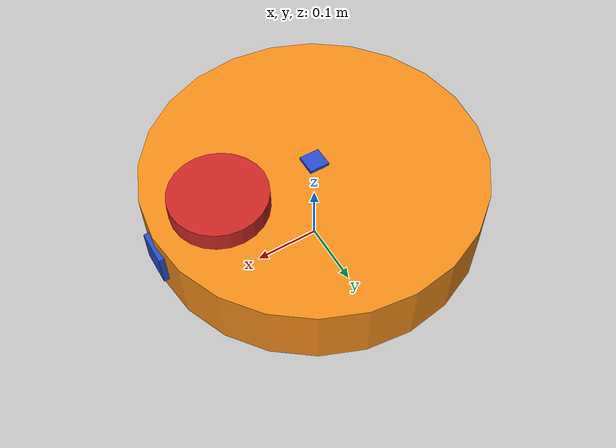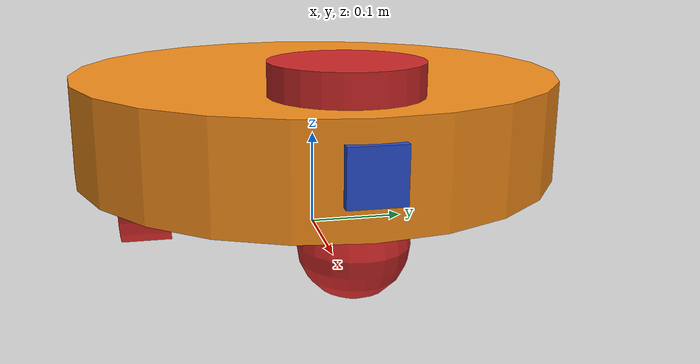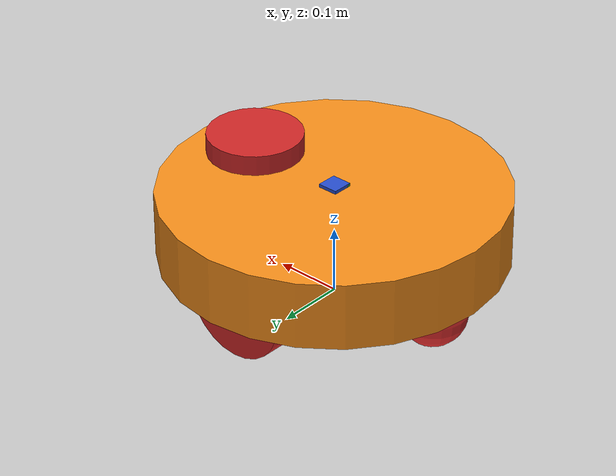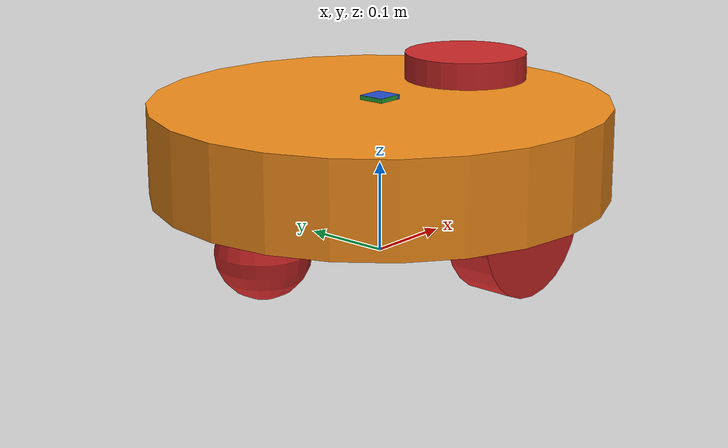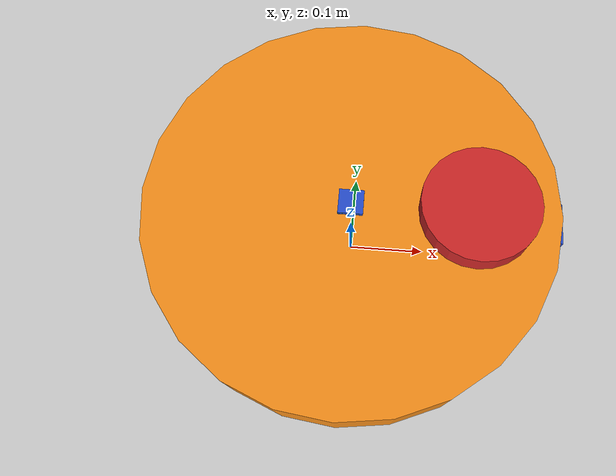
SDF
<sdf version='1.6'>
  <model name='round_bot'>
    <link name='base_footprint'>
      <inertial>
        <pose>0.004166666666666667 0 0.0905 0 0 0</pose>
        <mass>3.6000000000000001</mass>
        <inertia>
          <ixx>0.040327160000000001</ixx>
          <ixy>0</ixy>
          <ixz>-0.0013424999999999999</ixz>
          <iyy>0.09111466</iyy>
          <iyz>0</iyz>
          <izz>0.1152875</izz>
        </inertia>
      </inertial>
      <collision name='base_footprint_fixed_joint_lump__chassis_collision'>
        <pose>0 0 0.12 0 0 0</pose>
        <geometry>
          <cylinder>
            <length>0.10000000000000001</length>
            <radius>0.25</radius>
          </cylinder>
        </geometry>
        <surface>
          <contact>
            <ode/>
          </contact>
          <friction>
            <ode/>
          </friction>
        </surface>
      </collision>
      <collision name='base_footprint_fixed_joint_lump__back_caster_link_collision_1'>
        <pose>-0.18 0 0.0452 0 0 0</pose>
        <geometry>
          <sphere>
            <radius>0.050000000000000003</radius>
          </sphere>
        </geometry>
        <surface>
          <contact>
            <ode/>
          </contact>
          <friction>
            <ode/>
          </friction>
        </surface>
      </collision>
      <collision name='base_footprint_fixed_joint_lump__front_caster_link_collision_2'>
        <pose>0.18 0 0.0452 0 0 0</pose>
        <geometry>
          <sphere>
            <radius>0.050000000000000003</radius>
          </sphere>
        </geometry>
        <surface>
          <contact>
            <ode/>
          </contact>
          <friction>
            <ode/>
          </friction>
        </surface>
      </collision>
      <collision name='base_footprint_fixed_joint_lump__lidar_link_collision_3'>
        <pose>0.15 0 0.18 0 0 0</pose>
        <geometry>
          <cylinder>
            <length>0.040000000000000001</length>
            <radius>0.070000000000000007</radius>
          </cylinder>
        </geometry>
        <surface>
          <contact>
            <ode/>
          </contact>
          <friction>
            <ode/>
          </friction>
        </surface>
      </collision>
      <visual name='base_footprint_fixed_joint_lump__chassis_visual'>
        <pose>0 0 0.12 0 0 0</pose>
        <geometry>
          <cylinder>
            <length>0.10000000000000001</length>
            <radius>0.25</radius>
          </cylinder>
        </geometry>
        <material>
          <script>
            <name>Gazebo/Orange</name>
            <uri>file://media/materials/scripts/gazebo.material</uri>
          </script>
          <diffuse>1 0.375 0.125 1</diffuse>
          <ambient>1 0.375 0.125 1</ambient>
        </material>
      </visual>
      <visual name='base_footprint_fixed_joint_lump__back_caster_link_visual_1'>
        <pose>-0.18 0 0.0452 0 0 0</pose>
        <geometry>
          <sphere>
            <radius>0.050000000000000003</radius>
          </sphere>
        </geometry>
        <material>
          <script>
            <name>Gazebo/Red</name>
            <uri>file://media/materials/scripts/gazebo.material</uri>
          </script>
          <diffuse>1 0 0 1</diffuse>
          <ambient>1 0 0 1</ambient>
        </material>
      </visual>
      <visual name='base_footprint_fixed_joint_lump__camera_link_visual_2'>
        <pose>0.25 0 0.125 0 0 0</pose>
        <geometry>
          <box>
            <size>0.01 0.05 0.05</size>
          </box>
        </geometry>
        <material>
          <script>
            <name>Gazebo/Blue</name>
            <uri>file://media/materials/scripts/gazebo.material</uri>
          </script>
          <diffuse>0 0 1 1</diffuse>
          <ambient>0 0 1 1</ambient>
        </material>
      </visual>
      <visual name='base_footprint_fixed_joint_lump__front_caster_link_visual_3'>
        <pose>0.18 0 0.0452 0 0 0</pose>
        <geometry>
          <sphere>
            <radius>0.050000000000000003</radius>
          </sphere>
        </geometry>
        <material>
          <script>
            <name>Gazebo/Red</name>
            <uri>file://media/materials/scripts/gazebo.material</uri>
          </script>
          <diffuse>1 0 0 1</diffuse>
          <ambient>1 0 0 1</ambient>
        </material>
      </visual>
      <visual name='base_footprint_fixed_joint_lump__gps_link_visual_4'>
        <pose>0 0 0.17 0 0 0</pose>
        <geometry>
          <box>
            <size>0.03 0.03 0.01</size>
          </box>
        </geometry>
        <material>
          <script>
            <name>Gazebo/Blue</name>
            <uri>file://media/materials/scripts/gazebo.material</uri>
          </script>
          <diffuse>0 0 1 1</diffuse>
          <ambient>0 0 1 1</ambient>
        </material>
      </visual>
      <visual name='base_footprint_fixed_joint_lump__imu_link_visual_5'>
        <pose>0 0 0.165 0 0 0</pose>
        <geometry>
          <box>
            <size>0.03 0.03 0.02</size>
          </box>
        </geometry>
        <material>
          <script>
            <name>Gazebo/Green</name>
            <uri>file://media/materials/scripts/gazebo.material</uri>
          </script>
          <diffuse>0 1 0 1</diffuse>
          <ambient>0 1 0 1</ambient>
        </material>
      </visual>
      <visual name='base_footprint_fixed_joint_lump__lidar_link_visual_6'>
        <pose>0.15 0 0.18 0 0 0</pose>
        <geometry>
          <cylinder>
            <length>0.040000000000000001</length>
            <radius>0.070000000000000007</radius>
          </cylinder>
        </geometry>
        <material>
          <script>
            <name>Gazebo/Red</name>
            <uri>file://media/materials/scripts/gazebo.material</uri>
          </script>
          <diffuse>1 0 0 1</diffuse>
          <ambient>1 0 0 1</ambient>
        </material>
      </visual>
      <sensor name='camera' type='camera'>
        <update_rate>10</update_rate>
        <camera name='head'>
          <camera_info_topic>camera/camera_info</camera_info_topic>
          <horizontal_fov>1.3962634</horizontal_fov>
          <image>
            <width>640</width>
            <height>480</height>
            <format>R8G8B8</format>
          </image>
          <clip>
            <near>0.050000000000000003</near>
            <far>8</far>
          </clip>
        </camera>
        <topic>camera/image_raw</topic>
        <pose>0.25 0 0.125 0 -0 0</pose>
        <gz_frame_id>camera_link_optical</gz_frame_id>
      </sensor>
      <sensor name='imu_sensor' type='imu'>
        <always_on>true</always_on>
        <update_rate>100</update_rate>
        <visualize>true</visualize>
        <topic>imu</topic>
        <pose>0 0 0.165 0 -0 0</pose>
        <gz_frame_id>imu_link</gz_frame_id>
      </sensor>
      <sensor name='hls_lfcd_lds' type='gpu_lidar'>
        <always_on>true</always_on>
        <update_rate>30</update_rate>
        <lidar>
          <scan>
            <horizontal>
              <samples>360</samples>
              <resolution>1</resolution>
              <min_angle>-3.1415899999999999</min_angle>
              <max_angle>3.1415899999999999</max_angle>
            </horizontal>
          </scan>
          <range>
            <min>0.10000000000000001</min>
            <max>10</max>
            <resolution>0.10000000000000001</resolution>
          </range>
          <noise>
            <type>gaussian</type>
            <mean>0</mean>
            <stddev>0.01</stddev>
          </noise>
        </lidar>
        <topic>scan</topic>
        <pose>0.15 0 0.18 0 -0 0</pose>
        <gz_frame_id>lidar_link</gz_frame_id>
      </sensor>
    </link>
    <joint name='left_wheel_joint' type='revolute'>
      <pose relative_to='base_footprint'>0 0.18 0.075 -1.57 0 0</pose>
      <parent>base_footprint</parent>
      <child>left_wheel</child>
      <axis>
        <xyz>0 0 1</xyz>
        <limit>
          <lower>-10000000000000000</lower>
          <upper>10000000000000000</upper>
        </limit>
        <dynamics>
          <spring_reference>0</spring_reference>
          <spring_stiffness>0</spring_stiffness>
        </dynamics>
      </axis>
    </joint>
    <link name='left_wheel'>
      <pose relative_to='left_wheel_joint'>0 0 0 0 0 0</pose>
      <inertial>
        <pose>0 0 0 0 0 0</pose>
        <mass>0.75</mass>
        <inertia>
          <ixx>0.00135625</ixx>
          <ixy>0</ixy>
          <ixz>0</ixz>
          <iyy>0.00135625</iyy>
          <iyz>0</iyz>
          <izz>0.0023999999999999998</izz>
        </inertia>
      </inertial>
      <collision name='left_wheel_collision'>
        <pose>0 0 0 0 0 0</pose>
        <geometry>
          <cylinder>
            <length>0.050000000000000003</length>
            <radius>0.080000000000000002</radius>
          </cylinder>
        </geometry>
        <surface>
          <contact>
            <ode/>
          </contact>
          <friction>
            <ode/>
          </friction>
        </surface>
      </collision>
      <visual name='left_wheel_visual'>
        <pose>0 0 0 0 0 0</pose>
        <geometry>
          <cylinder>
            <length>0.050000000000000003</length>
            <radius>0.080000000000000002</radius>
          </cylinder>
        </geometry>
        <material>
          <script>
            <name>Gazebo/Red</name>
            <uri>file://media/materials/scripts/gazebo.material</uri>
          </script>
          <diffuse>1 0 0 1</diffuse>
          <ambient>1 0 0 1</ambient>
        </material>
      </visual>
    </link>
    <joint name='right_wheel_joint' type='revolute'>
      <pose relative_to='base_footprint'>0 -0.18 0.075 -1.57 0 0</pose>
      <parent>base_footprint</parent>
      <child>right_wheel</child>
      <axis>
        <xyz>0 0 1</xyz>
        <limit>
          <lower>-10000000000000000</lower>
          <upper>10000000000000000</upper>
        </limit>
        <dynamics>
          <spring_reference>0</spring_reference>
          <spring_stiffness>0</spring_stiffness>
        </dynamics>
      </axis>
    </joint>
    <link name='right_wheel'>
      <pose relative_to='right_wheel_joint'>0 0 0 0 0 0</pose>
      <inertial>
        <pose>0 0 0 0 0 0</pose>
        <mass>0.75</mass>
        <inertia>
          <ixx>0.00135625</ixx>
          <ixy>0</ixy>
          <ixz>0</ixz>
          <iyy>0.00135625</iyy>
          <iyz>0</iyz>
          <izz>0.0023999999999999998</izz>
        </inertia>
      </inertial>
      <collision name='right_wheel_collision'>
        <pose>0 0 0 0 0 0</pose>
        <geometry>
          <cylinder>
            <length>0.050000000000000003</length>
            <radius>0.080000000000000002</radius>
          </cylinder>
        </geometry>
        <surface>
          <contact>
            <ode/>
          </contact>
          <friction>
            <ode/>
          </friction>
        </surface>
      </collision>
      <visual name='right_wheel_visual'>
        <pose>0 0 0 0 0 0</pose>
        <geometry>
          <cylinder>
            <length>0.050000000000000003</length>
            <radius>0.080000000000000002</radius>
          </cylinder>
        </geometry>
        <material>
          <script>
            <name>Gazebo/Red</name>
            <uri>file://media/materials/scripts/gazebo.material</uri>
          </script>
          <diffuse>1 0 0 1</diffuse>
          <ambient>1 0 0 1</ambient>
        </material>
      </visual>
    </link>
    <plugin name='gz::sim::systems::DiffDrive' filename='gz-sim-diff-drive-system'>
      <left_joint>left_wheel_joint</left_joint>
      <right_joint>right_wheel_joint</right_joint>
      <wheel_separation>0.36</wheel_separation>
      <wheel_radius>0.08</wheel_radius>
      <max_linear_acceleration>1</max_linear_acceleration>
      <min_linear_acceleration>-1</min_linear_acceleration>
      <max_angular_acceleration>2</max_angular_acceleration>
      <min_angular_acceleration>-2</min_angular_acceleration>
      <max_linear_velocity>0.46</max_linear_velocity>
      <min_linear_velocity>-0.46</min_linear_velocity>
      <max_angular_velocity>1.9</max_angular_velocity>
      <min_angular_velocity>-1.9</min_angular_velocity>
      <frame_id>odom</frame_id>
      <child_frame_id>base_footprint</child_frame_id>
      <odom_topic>odom</odom_topic>
      <odom_publisher_frequency>50</odom_publisher_frequency>
      <tf_topic>/tf</tf_topic>
      <topic>cmd_vel</topic>
    </plugin>
    <plugin name='gz::sim::systems::JointStatePublisher' filename='gz-sim-joint-state-publisher-system'>
      <topic>joint_states</topic>
      <joint_name>left_wheel_joint</joint_name>
      <joint_name>right_wheel_joint</joint_name>
    </plugin>
    <frame name='back_caster_joint' attached_to='chassis'>
      <pose>-0.18 0 0.0452 0 -0 0</pose>
    </frame>
    <frame name='back_caster_link' attached_to='back_caster_joint'/>
    <frame name='camera_optical_joint' attached_to='camera_link'>
      <pose>0 0 0 -1.57 -0 -1.57</pose>
    </frame>
    <frame name='camera_link_optical' attached_to='camera_optical_joint'/>
    <frame name='camera_joint' attached_to='chassis'>
      <pose>0.25 0 0.125 0 -0 0</pose>
    </frame>
    <frame name='camera_link' attached_to='camera_joint'/>
    <frame name='front_caster_joint' attached_to='chassis'>
      <pose>0.18 0 0.0452 0 -0 0</pose>
    </frame>
    <frame name='front_caster_link' attached_to='front_caster_joint'/>
    <frame name='gps_joint' attached_to='chassis'>
      <pose>0 0 0.17 0 -0 0</pose>
    </frame>
    <frame name='gps_link' attached_to='gps_joint'/>
    <frame name='imu_joint' attached_to='chassis'>
      <pose>0 0 0.165 0 -0 0</pose>
    </frame>
    <frame name='imu_link' attached_to='imu_joint'/>
    <frame name='lidar_joint' attached_to='chassis'>
      <pose>0.15 0 0.18 0 -0 0</pose>
    </frame>
    <frame name='lidar_link' attached_to='lidar_joint'/>
    <frame name='chassis_joint' attached_to='base_footprint'>
      <pose>0 0 0 0 -0 0</pose>
    </frame>
    <frame name='chassis' attached_to='chassis_joint'/>
    <sensor name='gps_sensor' type='navsat'>
      <always_on>true</always_on>
      <update_rate>1</update_rate>
      <topic>gps/fix</topic>
      <gz_frame_id>gps_link</gz_frame_id>
      <navsat>
        <position_sensing>
          <horizontal>
            <noise type='gaussian'>
              <mean>0.0</mean>
              <stddev>0.0</stddev>
            </noise>
          </horizontal>
          <vertical>
            <noise type='gaussian'>
              <mean>0.0</mean>
              <stddev>0.0</stddev>
            </noise>
          </vertical>
        </position_sensing>
      </navsat>
    </sensor>
  </model>
</sdf>
